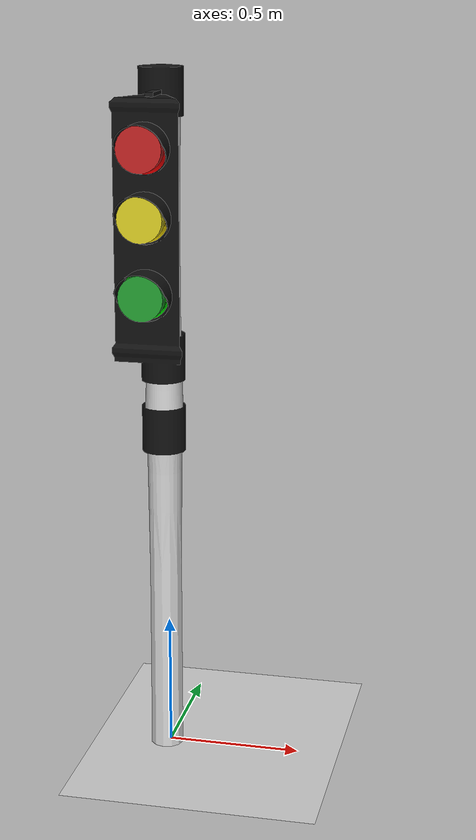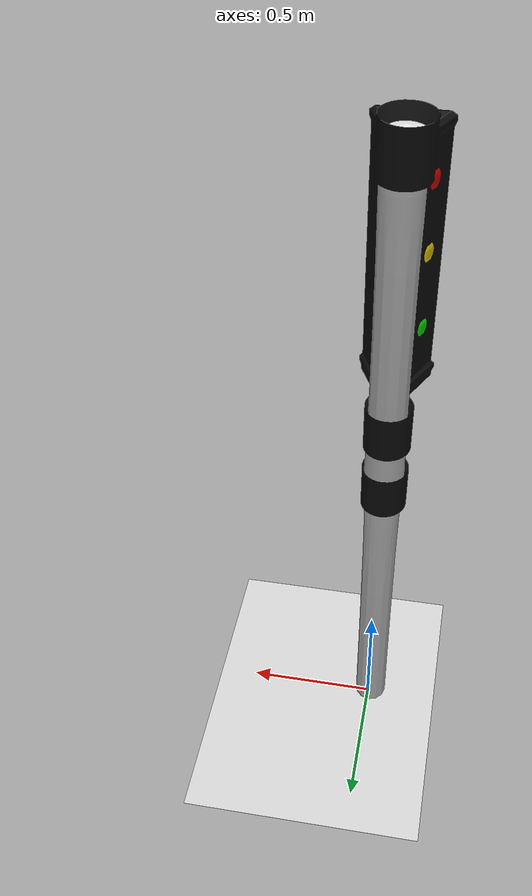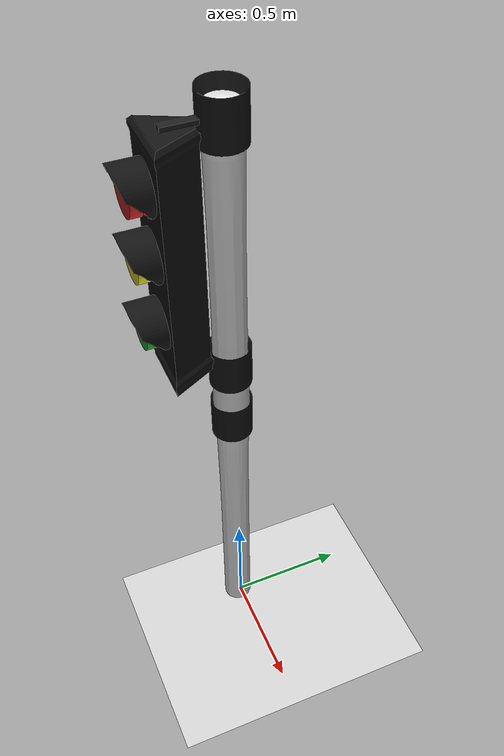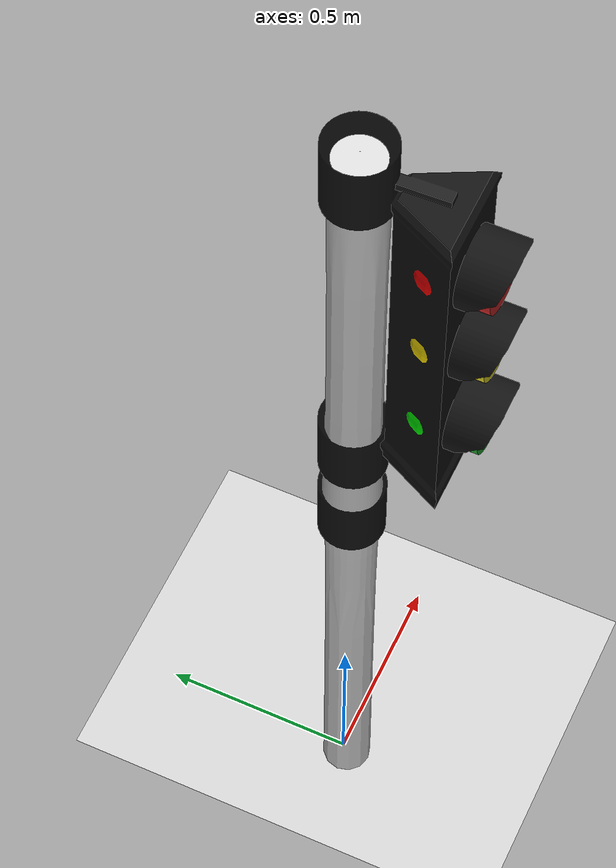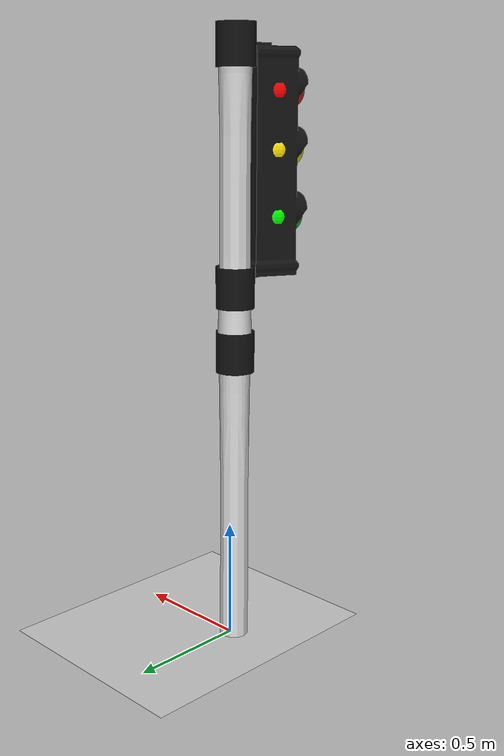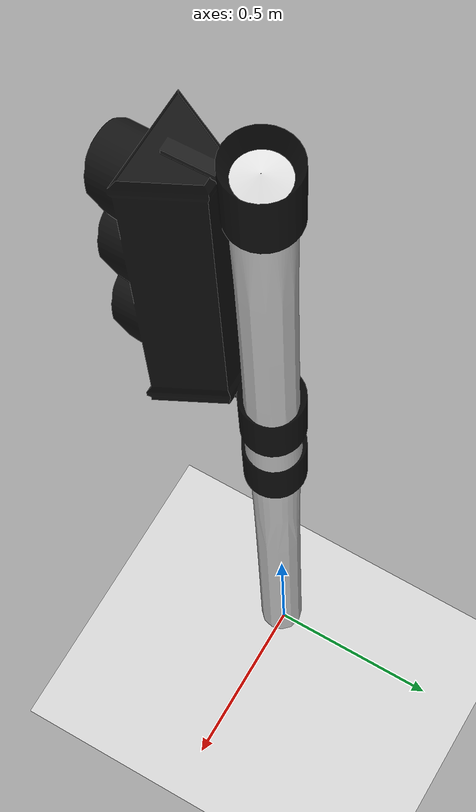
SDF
<?xml version="1.0" ?>
<sdf version="1.5">
  <world name="default">

  <gravity>0 0 0</gravity>

    <!-- A global light source -->
    <include>
      <uri>model://sun</uri>
    </include>

    <!-- A ground plane -->
    <include>
      <uri>model://ground_plane</uri>
    </include>

    <include>
      <name>traffic_signal</name>
        <uri>model://traffic_signal</uri>
       <pose>0 0 0 0 0 0</pose>
    </include>

    <include>
      <name>red_light</name>
        <uri>model://red_light</uri>
       <pose>-0.01 -0.31 2.315 1.57 0 0</pose>
    </include>

    <include>
      <name>empty_light_1</name>
        <uri>model://empty_light</uri>
       <pose>-0.01 -0.25 2.315 1.57 0 0</pose>
    </include>

    <include>
      <name>yellow_light</name>
        <uri>model://yellow_light</uri>
       <pose>-0.01 -0.31 2.08 1.57 0 0</pose>
    </include>

    <include>
      <name>empty_light_2</name>
        <uri>model://empty_light</uri>
       <pose>-0.01 -0.25 2.08 1.57 0 0</pose>
    </include>

    <include>
      <name>green_light</name>
        <uri>model://green_light</uri>
       <pose>-0.01 -0.31 1.81 1.57 0 0</pose>
    </include>

    <include>
      <name>empty_light_3</name>
        <uri>model://empty_light</uri>
       <pose>-0.01 -0.25 1.81 1.57 0 0</pose>
    </include>

  </world>
</sdf>

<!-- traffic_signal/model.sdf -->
<sdf version="1.5">
  <model name="traffic_signal">

    <pose>0 0 0  0 0 0</pose>

    <static>true</static>
    <link name="link">

      <collision name="collision">
        <geometry>
          <cylinder>
            <length> 1</length>
            <radius> 0.03</radius>
          </cylinder>
        </geometry>
      </collision>

      <visual name="visual">
        <geometry>
          <mesh>
            <uri>model://traffic_signal/meshes/trafic_lights.dae</uri>
            <scale>0.1 0.1 0.1</scale>
          </mesh>
        </geometry>
        <material>
           <script>
</script>
        </material>
      </visual>
    </link>
  </model>
</sdf>

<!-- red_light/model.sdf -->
<sdf version="1.5">
  <model name="red_light">
    <pose>0 0 0  0 0 0</pose>
	<gravity>0 0 0</gravity>
    <static>false</static>
    <link name="link">

      <collision name="collision">
        <geometry>
          <cylinder>
            <length> 0.01</length>
            <radius> 0.07</radius>
          </cylinder>
        </geometry>
      </collision>

      <visual name="visual">
        <geometry>
          <cylinder>
            <length> 0.04</length>
            <radius> 0.08</radius>
          </cylinder>
        </geometry>
        <material>
           <script>
  <name>Gazebo/RedGlow</name>
  </script>
        </material>
      </visual>
    </link>
  </model>
</sdf>

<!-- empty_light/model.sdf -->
<sdf version="1.5">
  <model name="empty_light">

    <pose>0 0 0  0 0 0</pose>
	<gravity>0 0 0</gravity>
    <static>false</static>
    <link name="link">

      <collision name="collision">
        <geometry>
          <cylinder>
            <length> 0.01</length>
            <radius> 0.07</radius>
          </cylinder>
        </geometry>
      </collision>

      <visual name="visual">
        <geometry>
          <cylinder>
            <length> 0.04</length>
            <radius> 0.08</radius>
          </cylinder>
        </geometry>
        <material>
           <script>
  <name>Gazebo/Black</name>
  </script>
        </material>
      </visual>
    </link>
  </model>
</sdf>

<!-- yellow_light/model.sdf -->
<sdf version="1.5">
  <model name="yellow_light">
    <pose>0 0 0  0 0 0</pose>
	<gravity>0 0 0</gravity>
    <static>false</static>
    <link name="link">

      <collision name="collision">
        <geometry>
          <cylinder>
            <length> 0.01</length>
            <radius> 0.05</radius>
          </cylinder>
        </geometry>
      </collision>

      <visual name="visual">
        <geometry>
          <cylinder>
            <length> 0.04</length>
            <radius> 0.08</radius>
          </cylinder>
        </geometry>
        <material>
           <script>
  <name>Gazebo/YellowGlow</name>
  </script>
        </material>
      </visual>
    </link>
  </model>
</sdf>

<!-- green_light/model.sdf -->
<sdf version="1.5">
  <model name="green_light">
<gravity>0</gravity>
    <pose>0 0 0  0 0 0</pose>
	<gravity>0 0 0</gravity>
    <static>false</static>
    <link name="link">

      <collision name="collision">
        <geometry>
          <cylinder>
            <length> 0.01</length>
            <radius> 0.05</radius>
          </cylinder>
        </geometry>
      </collision>

      <visual name="visual">
        <geometry>
          <cylinder>
            <length> 0.04</length>
            <radius> 0.08</radius>
          </cylinder>
        </geometry>
        <material>
           <script>
  <name>Gazebo/GreenGlow</name>
  </script>
        </material>
      </visual>
    </link>
  </model>
</sdf>
